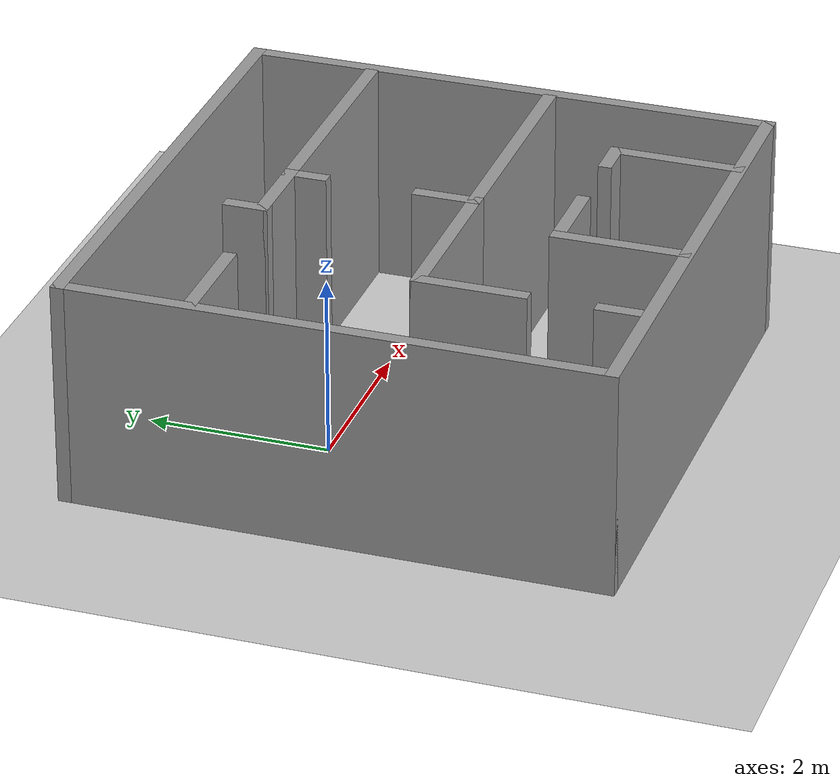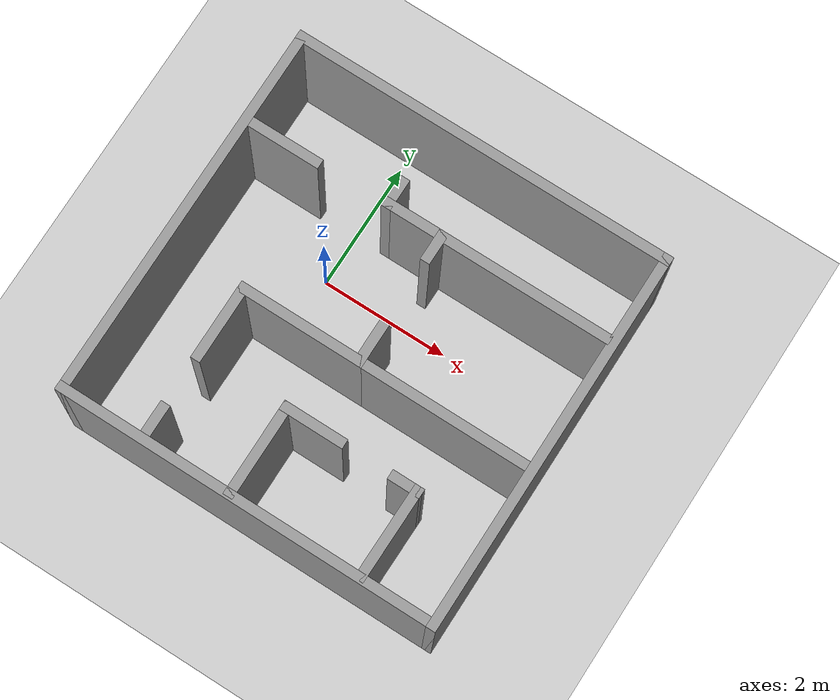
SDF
<sdf version="1.7">
 <world name="default">
  <light name="sun" type="directional">
   <pose>0 0 10 0 -0 0</pose>
   <diffuse>0.8 0.8 0.8 1</diffuse>
   <specular>0.2 0.2 0.2 1</specular>
   <attenuation>
    <range>1000</range>
    <constant>0.9</constant>
    <linear>0.01</linear>
    <quadratic>0.001</quadratic>
   </attenuation>
   <direction>-0.5 0.1 -0.9</direction>
   <spot><inner_angle>0</inner_angle><outer_angle>0</outer_angle><falloff>0</falloff></spot>
  </light>
  <model name="ground_plane">
   <static>1</static>
   <link name="link">
    <collision name="collision">
     <geometry><plane><normal>0 0 1</normal><size>100 100</size></plane></geometry>
     <surface>
      <contact><collide_bitmask>65535</collide_bitmask></contact>
      <friction><ode><mu>100</mu><mu2>50</mu2></ode></friction>
     </surface>
    </collision>
    <visual name="visual">
     <cast_shadows>0</cast_shadows>
     <geometry><plane><normal>0 0 1</normal><size>100 100</size></plane></geometry>
     <material>
      <script><uri>file://media/materials/scripts/gazebo.material</uri><name>Gazebo/Grey</name></script>
     </material>
    </visual>
   </link>
  </model>
  <gravity>0 0 -9.8</gravity>
  <magnetic_field>6e-06 2.3e-05 -4.2e-05</magnetic_field>
  <atmosphere type="adiabatic"/>
  <physics type="ode">
   <max_step_size>0.001</max_step_size>
   <real_time_factor>1</real_time_factor>
   <real_time_update_rate>1000</real_time_update_rate>
  </physics>
  <scene><ambient>0.4 0.4 0.4 1</ambient><background>0.7 0.7 0.7 1</background><shadows>1</shadows></scene>
  <spherical_coordinates>
   <surface_model>EARTH_WGS84</surface_model>
   <latitude_deg>0</latitude_deg>
   <longitude_deg>0</longitude_deg>
   <elevation>0</elevation>
   <heading_deg>0</heading_deg>
  </spherical_coordinates>
  <model name="maze11">
   <pose>1.12974 -0.693486 0 0 -0 0</pose>
   <link name="Wall_0">
    <collision name="Wall_0_Collision">
     <geometry><box><size>6 0.15 2.5</size></box></geometry>
     <pose>0 0 1.25 0 -0 0</pose>
    </collision>
    <visual name="Wall_0_Visual">
     <pose>0 0 1.25 0 -0 0</pose>
     <geometry><box><size>6 0.15 2.5</size></box></geometry>
     <material>
      <script><uri>file://media/materials/scripts/gazebo.material</uri><name>Gazebo/Grey</name></script>
      <ambient>1 1 1 1</ambient>
     </material>
     <meta><layer>0</layer></meta>
    </visual>
    <pose>0 -2.925 0 0 -0 0</pose>
   </link>
   <link name="Wall_1">
    <collision name="Wall_1_Collision">
     <geometry><box><size>6 0.15 2.5</size></box></geometry>
     <pose>0 0 1.25 0 -0 0</pose>
    </collision>
    <visual name="Wall_1_Visual">
     <pose>0 0 1.25 0 -0 0</pose>
     <geometry><box><size>6 0.15 2.5</size></box></geometry>
     <material>
      <script><uri>file://media/materials/scripts/gazebo.material</uri><name>Gazebo/Grey</name></script>
      <ambient>1 1 1 1</ambient>
     </material>
     <meta><layer>0</layer></meta>
    </visual>
    <pose>2.925 0 0 0 -0 1.5708</pose>
   </link>
   <link name="Wall_2">
    <collision name="Wall_2_Collision">
     <geometry><box><size>6 0.15 2.5</size></box></geometry>
     <pose>0 0 1.25 0 -0 0</pose>
    </collision>
    <visual name="Wall_2_Visual">
     <pose>0 0 1.25 0 -0 0</pose>
     <geometry><box><size>6 0.15 2.5</size></box></geometry>
     <material>
      <script><uri>file://media/materials/scripts/gazebo.material</uri><name>Gazebo/Grey</name></script>
      <ambient>1 1 1 1</ambient>
     </material>
     <meta><layer>0</layer></meta>
    </visual>
    <pose>0 2.925 0 0 -0 3.14159</pose>
   </link>
   <link name="Wall_20">
    <collision name="Wall_20_Collision">
     <geometry><box><size>1.5 0.15 2.5</size></box></geometry>
     <pose>0 0 1.25 0 -0 0</pose>
    </collision>
    <visual name="Wall_20_Visual">
     <pose>0 0 1.25 0 -0 0</pose>
     <geometry><box><size>1.5 0.15 2.5</size></box></geometry>
     <material>
      <script><uri>file://media/materials/scripts/gazebo.material</uri><name>Gazebo/Grey</name></script>
      <ambient>1 1 1 1</ambient>
     </material>
     <meta><layer>0</layer></meta>
    </visual>
    <pose>-0.263683 -2.21415 0 0 -0 1.5708</pose>
   </link>
   <link name="Wall_21">
    <collision name="Wall_21_Collision">
     <geometry><box><size>1 0.15 2.5</size></box></geometry>
     <pose>0 0 1.25 0 -0 0</pose>
    </collision>
    <visual name="Wall_21_Visual">
     <pose>0 0 1.25 0 -0 0</pose>
     <geometry><box><size>1 0.15 2.5</size></box></geometry>
     <material>
      <script><uri>file://media/materials/scripts/gazebo.material</uri><name>Gazebo/Grey</name></script>
      <ambient>1 1 1 1</ambient>
     </material>
     <meta><layer>0</layer></meta>
    </visual>
    <pose>0.161317 -1.53915 0 0 -0 0</pose>
   </link>
   <link name="Wall_23">
    <collision name="Wall_23_Collision">
     <geometry><box><size>0.5 0.15 2.5</size></box></geometry>
     <pose>0 0 1.25 0 -0 0</pose>
    </collision>
    <visual name="Wall_23_Visual">
     <pose>0 0 1.25 0 -0 0</pose>
     <geometry><box><size>0.5 0.15 2.5</size></box></geometry>
     <material>
      <script><uri>file://media/materials/scripts/gazebo.material</uri><name>Gazebo/Grey</name></script>
      <ambient>1 1 1 1</ambient>
     </material>
     <meta><layer>0</layer></meta>
    </visual>
    <pose>1.62454 -1.55238 0 0 -0 0</pose>
   </link>
   <link name="Wall_24">
    <collision name="Wall_24_Collision">
     <geometry><box><size>1.48684 0.15 2.5</size></box></geometry>
     <pose>0 0 1.25 0 -0 0</pose>
    </collision>
    <visual name="Wall_24_Visual">
     <pose>0 0 1.25 0 -0 0</pose>
     <geometry><box><size>1.48684 0.15 2.5</size></box></geometry>
     <material>
      <script><uri>file://media/materials/scripts/gazebo.material</uri><name>Gazebo/Grey</name></script>
      <ambient>1 1 1 1</ambient>
     </material>
     <meta><layer>0</layer></meta>
    </visual>
    <pose>1.79293 -2.22077 0 0 -0 -1.58069</pose>
   </link>
   <link name="Wall_26">
    <collision name="Wall_26_Collision">
     <geometry><box><size>2.75 0.15 2.5</size></box></geometry>
     <pose>0 0 1.25 0 -0 0</pose>
    </collision>
    <visual name="Wall_26_Visual">
     <pose>0 0 1.25 0 -0 0</pose>
     <geometry><box><size>2.75 0.15 2.5</size></box></geometry>
     <material>
      <script><uri>file://media/materials/scripts/gazebo.material</uri><name>Gazebo/Grey</name></script>
      <ambient>1 1 1 1</ambient>
     </material>
     <meta><layer>0</layer></meta>
    </visual>
    <pose>1.50529 -0.483659 0 0 -0 0</pose>
   </link>
   <link name="Wall_3">
    <collision name="Wall_3_Collision">
     <geometry><box><size>6 0.15 2.5</size></box></geometry>
     <pose>0 0 1.25 0 -0 0</pose>
    </collision>
    <visual name="Wall_3_Visual">
     <pose>0 0 1.25 0 -0 0</pose>
     <geometry><box><size>6 0.15 2.5</size></box></geometry>
     <material>
      <script><uri>file://media/materials/scripts/gazebo.material</uri><name>Gazebo/Grey</name></script>
      <ambient>1 1 1 1</ambient>
     </material>
     <meta><layer>0</layer></meta>
    </visual>
    <pose>-2.925 0 0 0 -0 -1.5708</pose>
   </link>
   <link name="Wall_30">
    <collision name="Wall_30_Collision">
     <geometry><box><size>0.75 0.15 2.5</size></box></geometry>
     <pose>0 0 1.25 0 -0 0</pose>
    </collision>
    <visual name="Wall_30_Visual">
     <pose>0 0 1.25 0 -0 0</pose>
     <geometry><box><size>0.75 0.15 2.5</size></box></geometry>
     <material>
      <script><uri>file://media/materials/scripts/gazebo.material</uri><name>Gazebo/Grey</name></script>
      <ambient>1 1 1 1</ambient>
     </material>
     <meta><layer>0</layer></meta>
    </visual>
    <pose>0.205293 -0.183659 0 0 -0 1.5708</pose>
   </link>
   <link name="Wall_32">
    <collision name="Wall_32_Collision">
     <geometry><box><size>0.5 0.15 2.5</size></box></geometry>
     <pose>0 0 1.25 0 -0 0</pose>
    </collision>
    <visual name="Wall_32_Visual">
     <pose>0 0 1.25 0 -0 0</pose>
     <geometry><box><size>0.5 0.15 2.5</size></box></geometry>
     <material>
      <script><uri>file://media/materials/scripts/gazebo.material</uri><name>Gazebo/Grey</name></script>
      <ambient>1 1 1 1</ambient>
     </material>
     <meta><layer>0</layer></meta>
    </visual>
    <pose>0.205293 1.39134 0 0 -0 1.5708</pose>
   </link>
   <link name="Wall_33">
    <collision name="Wall_33_Collision">
     <geometry><box><size>2.75 0.15 2.5</size></box></geometry>
     <pose>0 0 1.25 0 -0 0</pose>
    </collision>
    <visual name="Wall_33_Visual">
     <pose>0 0 1.25 0 -0 0</pose>
     <geometry><box><size>2.75 0.15 2.5</size></box></geometry>
     <material>
      <script><uri>file://media/materials/scripts/gazebo.material</uri><name>Gazebo/Grey</name></script>
      <ambient>1 1 1 1</ambient>
     </material>
     <meta><layer>0</layer></meta>
    </visual>
    <pose>1.50529 1.56634 0 0 -0 0</pose>
   </link>
   <link name="Wall_36">
    <collision name="Wall_36_Collision">
     <geometry><box><size>2 0.15 2.5</size></box></geometry>
     <pose>0 0 1.25 0 -0 0</pose>
    </collision>
    <visual name="Wall_36_Visual">
     <pose>0 0 1.25 0 -0 0</pose>
     <geometry><box><size>2 0.15 2.5</size></box></geometry>
     <material>
      <script><uri>file://media/materials/scripts/gazebo.material</uri><name>Gazebo/Grey</name></script>
      <ambient>1 1 1 1</ambient>
     </material>
     <meta><layer>0</layer></meta>
    </visual>
    <pose>-0.719707 -0.483659 0 0 -0 3.14159</pose>
   </link>
   <link name="Wall_38">
    <collision name="Wall_38_Collision">
     <geometry><box><size>1.25 0.15 2.5</size></box></geometry>
     <pose>0 0 1.25 0 -0 0</pose>
    </collision>
    <visual name="Wall_38_Visual">
     <pose>0 0 1.25 0 -0 0</pose>
     <geometry><box><size>1.25 0.15 2.5</size></box></geometry>
     <material>
      <script><uri>file://media/materials/scripts/gazebo.material</uri><name>Gazebo/Grey</name></script>
      <ambient>1 1 1 1</ambient>
     </material>
     <meta><layer>0</layer></meta>
    </visual>
    <pose>-1.64471 -1.03366 0 0 -0 -1.5708</pose>
   </link>
   <link name="Wall_40">
    <collision name="Wall_40_Collision">
     <geometry><box><size>0.5 0.15 2.5</size></box></geometry>
     <pose>0 0 1.25 0 -0 0</pose>
    </collision>
    <visual name="Wall_40_Visual">
     <pose>0 0 1.25 0 -0 0</pose>
     <geometry><box><size>0.5 0.15 2.5</size></box></geometry>
     <material>
      <script><uri>file://media/materials/scripts/gazebo.material</uri><name>Gazebo/Grey</name></script>
      <ambient>1 1 1 1</ambient>
     </material>
     <meta><layer>0</layer></meta>
    </visual>
    <pose>-1.64471 -2.60866 0 0 -0 -1.5708</pose>
   </link>
   <link name="Wall_42">
    <collision name="Wall_42_Collision">
     <geometry><box><size>1 0.15 2.5</size></box></geometry>
     <pose>0 0 1.25 0 -0 0</pose>
    </collision>
    <visual name="Wall_42_Visual">
     <pose>0 0 1.25 0 -0 0</pose>
     <geometry><box><size>1 0.15 2.5</size></box></geometry>
     <material>
      <script><uri>file://media/materials/scripts/gazebo.material</uri><name>Gazebo/Grey</name></script>
      <ambient>1 1 1 1</ambient>
     </material>
     <meta><layer>0</layer></meta>
    </visual>
    <pose>-0.219707 1.56634 0 0 -0 3.14159</pose>
   </link>
   <link name="Wall_43">
    <collision name="Wall_43_Collision">
     <geometry><box><size>0.5 0.15 2.5</size></box></geometry>
     <pose>0 0 1.25 0 -0 0</pose>
    </collision>
    <visual name="Wall_43_Visual">
     <pose>0 0 1.25 0 -0 0</pose>
     <geometry><box><size>0.5 0.15 2.5</size></box></geometry>
     <material>
      <script><uri>file://media/materials/scripts/gazebo.material</uri><name>Gazebo/Grey</name></script>
      <ambient>1 1 1 1</ambient>
     </material>
     <meta><layer>0</layer></meta>
    </visual>
    <pose>-0.644707 1.74134 0 0 -0 1.5708</pose>
   </link>
   <link name="Wall_47">
    <collision name="Wall_47_Collision">
     <geometry><box><size>1.25 0.15 2.5</size></box></geometry>
     <pose>0 0 1.25 0 -0 0</pose>
    </collision>
    <visual name="Wall_47_Visual">
     <pose>0 0 1.25 0 -0 0</pose>
     <geometry><box><size>1.25 0.15 2.5</size></box></geometry>
     <material>
      <script><uri>file://media/materials/scripts/gazebo.material</uri><name>Gazebo/Grey</name></script>
      <ambient>1 1 1 1</ambient>
     </material>
     <meta><layer>0</layer></meta>
    </visual>
    <pose>-2.34045 1.5277 0 0 -0 0</pose>
   </link>
   <static>1</static>
  </model>
 </world>
</sdf>
